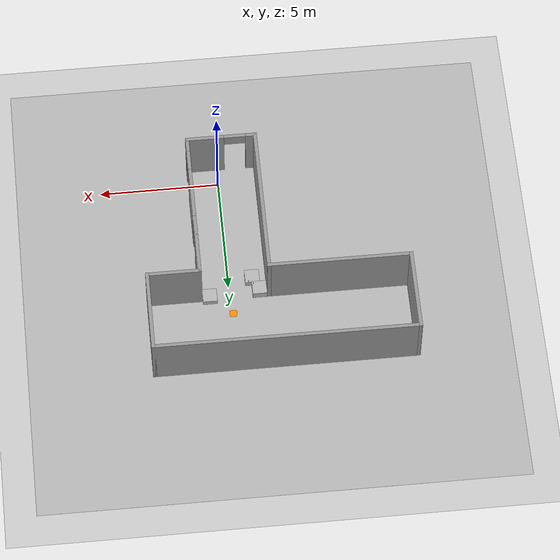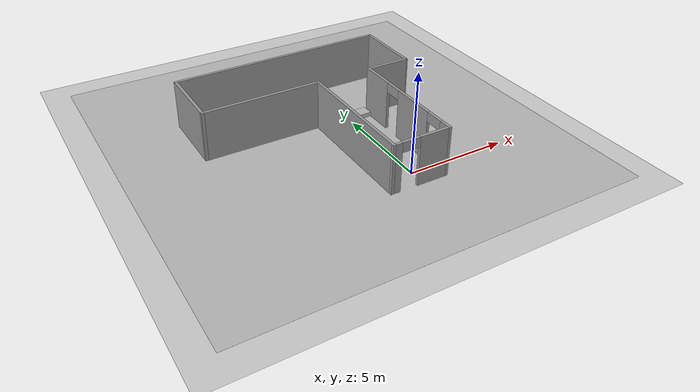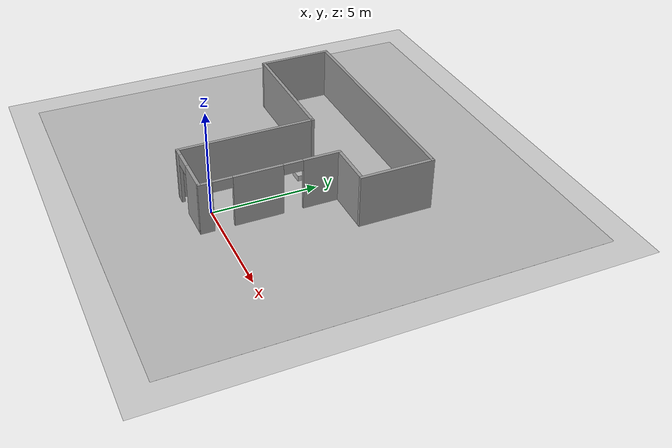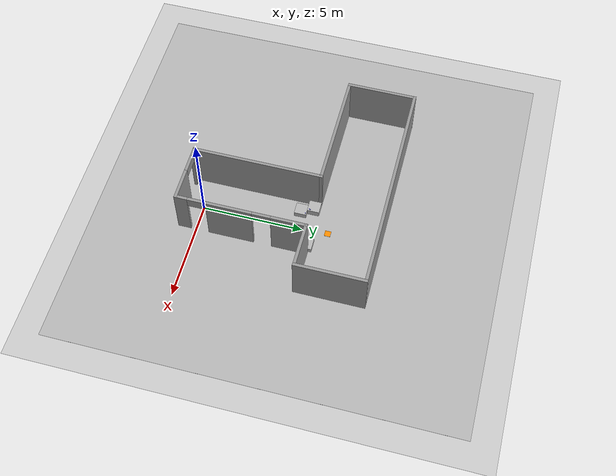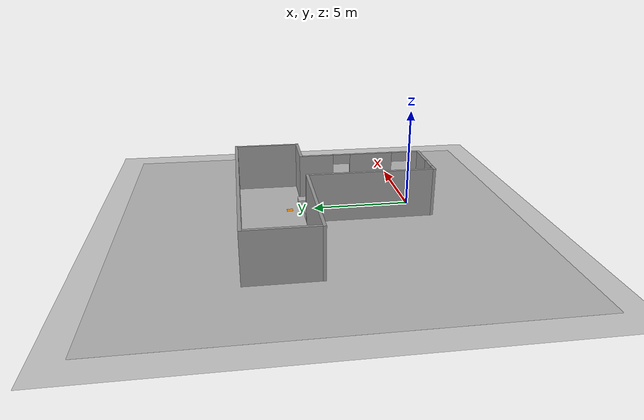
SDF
<sdf version="1.7">
 <world name="default">
  <model name="ground_plane">
   <static>1</static>
   <link name="link">
    <collision name="collision">
     <geometry><plane><normal>0 0 1</normal><size>100 100</size></plane></geometry>
     <surface>
      <contact><collide_bitmask>65535</collide_bitmask></contact>
      <friction><ode><mu>100</mu><mu2>50</mu2></ode></friction>
     </surface>
    </collision>
    <visual name="visual">
     <cast_shadows>0</cast_shadows>
     <geometry><plane><normal>0 0 1</normal><size>100 100</size></plane></geometry>
     <material>
      <script><uri>file://media/materials/scripts/gazebo.material</uri><name>Gazebo/Grey</name></script>
     </material>
    </visual>
   </link>
  </model>
  <model name="office_corridor">
   <pose>-2.07086 4.01142 0 0 -0 0</pose>
   <link name="Wall_11">
    <collision name="Wall_11_Collision">
     <geometry><box><size>6 0.15 2.5</size></box></geometry>
     <pose>0 0 1.25 0 -0 0</pose>
    </collision>
    <visual name="Wall_11_Visual">
     <pose>0 0 1.25 0 -0 0</pose>
     <geometry><box><size>6 0.15 2.5</size></box></geometry>
     <material>
      <script><uri>file://media/materials/scripts/gazebo.material</uri><name>Gazebo/Grey</name></script>
      <ambient>1 1 1 1</ambient>
     </material>
     <meta><layer>0</layer></meta>
    </visual>
    <pose>-2.5 1.5 0 0 -0 3.14159</pose>
   </link>
   <link name="Wall_12">
    <collision name="Wall_12_Collision">
     <geometry><box><size>3.5 0.15 2.5</size></box></geometry>
     <pose>0 0 1.25 0 -0 0</pose>
    </collision>
    <visual name="Wall_12_Visual">
     <pose>0 0 1.25 0 -0 0</pose>
     <geometry><box><size>3.5 0.15 2.5</size></box></geometry>
     <material>
      <script><uri>file://media/materials/scripts/gazebo.material</uri><name>Gazebo/Grey</name></script>
      <ambient>1 1 1 1</ambient>
     </material>
     <meta><layer>0</layer></meta>
    </visual>
    <pose>-5.425 3.175 0 0 -0 1.5708</pose>
   </link>
   <link name="Wall_13">
    <collision name="Wall_13_Collision">
     <geometry><box><size>11 0.15 2.5</size></box></geometry>
     <pose>0 0 1.25 0 -0 0</pose>
    </collision>
    <visual name="Wall_13_Visual">
     <pose>0 0 1.25 0 -0 0</pose>
     <geometry><box><size>11 0.15 2.5</size></box></geometry>
     <material>
      <script><uri>file://media/materials/scripts/gazebo.material</uri><name>Gazebo/Grey</name></script>
      <ambient>1 1 1 1</ambient>
     </material>
     <meta><layer>0</layer></meta>
    </visual>
    <pose>0 4.85 0 0 -0 0</pose>
   </link>
   <link name="Wall_14">
    <collision name="Wall_14_Collision">
     <geometry><box><size>3.5 0.15 2.5</size></box></geometry>
     <pose>0 0 1.25 0 -0 0</pose>
    </collision>
    <visual name="Wall_14_Visual">
     <pose>0 0 1.25 0 -0 0</pose>
     <geometry><box><size>3.5 0.15 2.5</size></box></geometry>
     <material>
      <script><uri>file://media/materials/scripts/gazebo.material</uri><name>Gazebo/Grey</name></script>
      <ambient>1 1 1 1</ambient>
     </material>
     <meta><layer>0</layer></meta>
    </visual>
    <pose>5.425 3.175 0 0 -0 -1.5708</pose>
   </link>
   <link name="Wall_2">
    <pose>1.85 -4.85 0 0 -0 0</pose>
    <visual name="Wall_2_Visual_0">
     <pose>-1.25944 0 1.25 0 -0 0</pose>
     <geometry><box><size>0.481114 0.15 2.5</size></box></geometry>
     <material>
      <script><uri>file://media/materials/scripts/gazebo.material</uri><name>Gazebo/Grey</name></script>
      <ambient>1 1 1 1</ambient>
     </material>
     <meta><layer>0</layer></meta>
    </visual>
    <collision name="Wall_2_Collision_0">
     <geometry><box><size>0.481114 0.15 2.5</size></box></geometry>
     <pose>-1.25944 0 1.25 0 -0 0</pose>
    </collision>
    <visual name="Wall_2_Visual_1">
     <pose>0.690557 0 1.25 0 -0 0</pose>
     <geometry><box><size>1.61889 0.15 2.5</size></box></geometry>
     <material>
      <script><uri>file://media/materials/scripts/gazebo.material</uri><name>Gazebo/Grey</name></script>
      <ambient>1 1 1 1</ambient>
     </material>
     <meta><layer>0</layer></meta>
    </visual>
    <collision name="Wall_2_Collision_1">
     <geometry><box><size>1.61889 0.15 2.5</size></box></geometry>
     <pose>0.690557 0 1.25 0 -0 0</pose>
    </collision>
    <visual name="Wall_2_Visual_2">
     <pose>-0.568886 0 2.25 0 -0 0</pose>
     <geometry><box><size>0.9 0.15 0.5</size></box></geometry>
     <material>
      <script><uri>file://media/materials/scripts/gazebo.material</uri><name>Gazebo/Grey</name></script>
      <ambient>1 1 1 1</ambient>
     </material>
     <meta><layer>0</layer></meta>
    </visual>
    <collision name="Wall_2_Collision_2">
     <geometry><box><size>0.9 0.15 0.5</size></box></geometry>
     <pose>-0.568886 0 2.25 0 -0 0</pose>
    </collision>
   </link>
   <link name="Wall_5">
    <collision name="Wall_5_Collision">
     <geometry><box><size>6.5 0.15 2.5</size></box></geometry>
     <pose>0 0 1.25 0 -0 0</pose>
    </collision>
    <visual name="Wall_5_Visual">
     <pose>0 0 1.25 0 -0 0</pose>
     <geometry><box><size>6.5 0.15 2.5</size></box></geometry>
     <material>
      <script><uri>file://media/materials/scripts/gazebo.material</uri><name>Gazebo/Grey</name></script>
      <ambient>1 1 1 1</ambient>
     </material>
     <meta><layer>0</layer></meta>
    </visual>
    <pose>0.425 -1.675 0 0 -0 1.5708</pose>
   </link>
   <link name="Wall_7">
    <pose>3.275 -1.675 0 0 -0 1.5708</pose>
    <visual name="Wall_7_Visual_0">
     <pose>-2.92472 0 1.25 0 -0 0</pose>
     <geometry><box><size>0.650562 0.15 2.5</size></box></geometry>
     <material>
      <script><uri>file://media/materials/scripts/gazebo.material</uri><name>Gazebo/Grey</name></script>
      <ambient>1 1 1 1</ambient>
     </material>
     <meta><layer>0</layer></meta>
    </visual>
    <collision name="Wall_7_Collision_0">
     <geometry><box><size>0.650562 0.15 2.5</size></box></geometry>
     <pose>-2.92472 0 1.25 0 -0 0</pose>
    </collision>
    <visual name="Wall_7_Visual_1">
     <pose>-0.567607 0 1.25 0 -0 0</pose>
     <geometry><box><size>2.26366 0.15 2.5</size></box></geometry>
     <material>
      <script><uri>file://media/materials/scripts/gazebo.material</uri><name>Gazebo/Grey</name></script>
      <ambient>1 1 1 1</ambient>
     </material>
     <meta><layer>0</layer></meta>
    </visual>
    <collision name="Wall_7_Collision_1">
     <geometry><box><size>2.26366 0.15 2.5</size></box></geometry>
     <pose>-0.567607 0 1.25 0 -0 0</pose>
    </collision>
    <visual name="Wall_7_Visual_2">
     <pose>2.35711 0 1.25 0 -0 0</pose>
     <geometry><box><size>1.78577 0.15 2.5</size></box></geometry>
     <material>
      <script><uri>file://media/materials/scripts/gazebo.material</uri><name>Gazebo/Grey</name></script>
      <ambient>1 1 1 1</ambient>
     </material>
     <meta><layer>0</layer></meta>
    </visual>
    <collision name="Wall_7_Collision_2">
     <geometry><box><size>1.78577 0.15 2.5</size></box></geometry>
     <pose>2.35711 0 1.25 0 -0 0</pose>
    </collision>
    <visual name="Wall_7_Visual_3">
     <pose>-2.14944 0 2.25 0 -0 0</pose>
     <geometry><box><size>0.9 0.15 0.5</size></box></geometry>
     <material>
      <script><uri>file://media/materials/scripts/gazebo.material</uri><name>Gazebo/Grey</name></script>
      <ambient>1 1 1 1</ambient>
     </material>
     <meta><layer>0</layer></meta>
    </visual>
    <collision name="Wall_7_Collision_3">
     <geometry><box><size>0.9 0.15 0.5</size></box></geometry>
     <pose>-2.14944 0 2.25 0 -0 0</pose>
    </collision>
    <visual name="Wall_7_Visual_4">
     <pose>1.01422 0 2.25 0 -0 0</pose>
     <geometry><box><size>0.9 0.15 0.5</size></box></geometry>
     <material>
      <script><uri>file://media/materials/scripts/gazebo.material</uri><name>Gazebo/Grey</name></script>
      <ambient>1 1 1 1</ambient>
     </material>
     <meta><layer>0</layer></meta>
    </visual>
    <collision name="Wall_7_Collision_4">
     <geometry><box><size>0.9 0.15 0.5</size></box></geometry>
     <pose>1.01422 0 2.25 0 -0 0</pose>
    </collision>
   </link>
   <link name="Wall_8">
    <collision name="Wall_8_Collision">
     <geometry><box><size>2.25 0.15 2.5</size></box></geometry>
     <pose>0 0 1.25 0 -0 0</pose>
    </collision>
    <visual name="Wall_8_Visual">
     <pose>0 0 1.25 0 -0 0</pose>
     <geometry><box><size>2.25 0.15 2.5</size></box></geometry>
     <material>
      <script><uri>file://media/materials/scripts/gazebo.material</uri><name>Gazebo/Grey</name></script>
      <ambient>1 1 1 1</ambient>
     </material>
     <meta><layer>0</layer></meta>
    </visual>
    <pose>4.325 1.5 0 0 -0 0</pose>
   </link>
   <static>1</static>
  </model>
  <model name="Floor_room">
   <link name="main">
    <pose>0 0 0.01 0 -0 0</pose>
    <collision name="main_Collision"><geometry><box><size>20 20 0.001</size></box></geometry></collision>
    <visual name="main_Visual">
     <geometry><box><size>20 20 0.001</size></box></geometry>
     <material>
      <script>
       <uri>model://Floor_room/materials/scripts</uri>
       <uri>model://Floor_room/materials/textures</uri>
       <name>floor_room</name>
      </script>
     </material>
    </visual>
   </link>
   <static>1</static>
   <pose>-1.45961 4.76592 0 0 -0 0</pose>
  </model>
  <model name="unit_box_SMALL_clone_0">
   <pose>-1.26832 5.2896 0.1005 0 -0 0.007743</pose>
   <link name="link">
    <inertial>
     <mass>1</mass>
     <inertia>
      <ixx>1.56e-06</ixx>
      <ixy>0</ixy>
      <ixz>0</ixz>
      <iyy>1.56e-06</iyy>
      <iyz>0</iyz>
      <izz>1.2e-07</izz>
     </inertia>
    </inertial>
    <collision name="collision"><geometry><box><size>0.6 0.6 0.46</size></box></geometry></collision>
    <visual name="visual">
     <geometry><box><size>0.6 0.6 0.46</size></box></geometry>
     <material>
      <script>
       <uri>model://side_table_1/materials/scripts</uri>
       <uri>model://side_table_1/materials/textures</uri>
       <name>side_table_1</name>
      </script>
     </material>
    </visual>
   </link>
   <static>1</static>
  </model>
  <model name="unit_box_SMALL_clone_1">
   <pose>-1.00556 4.69545 0.1005 0 -0 0.007743</pose>
   <link name="link">
    <inertial>
     <mass>1</mass>
     <inertia>
      <ixx>1.56e-06</ixx>
      <ixy>0</ixy>
      <ixz>0</ixz>
      <iyy>1.56e-06</iyy>
      <iyz>0</iyz>
      <izz>1.2e-07</izz>
     </inertia>
    </inertial>
    <collision name="collision"><geometry><box><size>0.6 0.6 0.36</size></box></geometry></collision>
    <visual name="visual">
     <geometry><box><size>0.6 0.6 0.36</size></box></geometry>
     <material>
      <script>
       <uri>model://side_table_1/materials/scripts</uri>
       <uri>model://side_table_1/materials/textures</uri>
       <name>side_table_1</name>
      </script>
     </material>
    </visual>
   </link>
   <static>1</static>
  </model>
  <model name="unit_box_SMALL_clone_2_clone">
   <pose>0.81695 5.43498 0.1005 0 -0 0.007743</pose>
   <link name="link">
    <inertial>
     <mass>1</mass>
     <inertia>
      <ixx>1.56e-06</ixx>
      <ixy>0</ixy>
      <ixz>0</ixz>
      <iyy>1.56e-06</iyy>
      <iyz>0</iyz>
      <izz>1.2e-07</izz>
     </inertia>
    </inertial>
    <collision name="collision"><geometry><box><size>0.6 0.6 0.28</size></box></geometry></collision>
    <visual name="visual">
     <geometry><box><size>0.6 0.6 0.28</size></box></geometry>
     <material>
      <script>
       <uri>model://side_table_1/materials/scripts</uri>
       <uri>model://side_table_1/materials/textures</uri>
       <name>side_table_1</name>
      </script>
     </material>
    </visual>
   </link>
   <static>1</static>
  </model>
  <model name="box_b_clone_6">
   <pose>-0.785834 4.96005 0.3105 1.4e-05 1.7e-05 0.009628</pose>
   <link name="link">
    <inertial>
     <mass>0.005</mass>
     <inertia>
      <ixx>1.56e-06</ixx>
      <ixy>0</ixy>
      <ixz>0</ixz>
      <iyy>1.56e-06</iyy>
      <iyz>0</iyz>
      <izz>1.2e-07</izz>
     </inertia>
    </inertial>
    <collision name="collision"><geometry><box><size>0.015 0.015 0.06</size></box></geometry></collision>
    <visual name="visual">
     <geometry><box><size>0.015 0.015 0.06</size></box></geometry>
     <material>
      <script><name>Gazebo/Grey</name><uri>file://media/materials/scripts/gazebo.material</uri></script>
      <ambient>0 0 1 1</ambient>
      <diffuse>0 0 1 1</diffuse>
      <specular>0 0 0 1</specular>
      <emissive>0 0 0 1</emissive>
     </material>
    </visual>
   </link>
  </model>
  <model name="box_b_clone_6_clone">
   <pose>-0.843729 4.95475 0.310499 5.3e-05 2.3e-05 0.013953</pose>
   <link name="link">
    <inertial>
     <mass>0.005</mass>
     <inertia>
      <ixx>1.56e-06</ixx>
      <ixy>0</ixy>
      <ixz>0</ixz>
      <iyy>1.56e-06</iyy>
      <iyz>0</iyz>
      <izz>1.2e-07</izz>
     </inertia>
    </inertial>
    <collision name="collision"><geometry><box><size>0.015 0.015 0.06</size></box></geometry></collision>
    <visual name="visual">
     <geometry><box><size>0.015 0.015 0.06</size></box></geometry>
     <material>
      <script><name>Gazebo/Grey</name><uri>file://media/materials/scripts/gazebo.material</uri></script>
      <ambient>0 0 1 1</ambient>
      <diffuse>0 0 1 1</diffuse>
      <specular>0 0 0 1</specular>
      <emissive>0 0 0 1</emissive>
     </material>
    </visual>
   </link>
  </model>
  <model name="box_b_clone_6_clone_clone">
   <pose>-1.02987 5.09173 0.3605 -1.1e-05 -3.3e-05 0.013899</pose>
   <link name="link">
    <inertial>
     <mass>0.005</mass>
     <inertia>
      <ixx>1.56e-06</ixx>
      <ixy>0</ixy>
      <ixz>0</ixz>
      <iyy>1.56e-06</iyy>
      <iyz>0</iyz>
      <izz>1.2e-07</izz>
     </inertia>
    </inertial>
    <collision name="collision"><geometry><box><size>0.015 0.015 0.06</size></box></geometry></collision>
    <visual name="visual">
     <geometry><box><size>0.015 0.015 0.06</size></box></geometry>
     <material>
      <script><name>Gazebo/Grey</name><uri>file://media/materials/scripts/gazebo.material</uri></script>
      <ambient>0 0 1 1</ambient>
      <diffuse>0 0 1 1</diffuse>
      <specular>0 0 0 1</specular>
      <emissive>0 0 0 1</emissive>
     </material>
    </visual>
   </link>
  </model>
  <model name="box_b_clone_6_clone_clone_clone">
   <pose>-1.01917 5.14847 0.360499 2.9e-05 3.9e-05 0.012694</pose>
   <link name="link">
    <inertial>
     <mass>0.005</mass>
     <inertia>
      <ixx>1.56e-06</ixx>
      <ixy>0</ixy>
      <ixz>0</ixz>
      <iyy>1.56e-06</iyy>
      <iyz>0</iyz>
      <izz>1.2e-07</izz>
     </inertia>
    </inertial>
    <collision name="collision"><geometry><box><size>0.015 0.015 0.06</size></box></geometry></collision>
    <visual name="visual">
     <geometry><box><size>0.015 0.015 0.06</size></box></geometry>
     <material>
      <script><name>Gazebo/Grey</name><uri>file://media/materials/scripts/gazebo.material</uri></script>
      <ambient>0 0 1 1</ambient>
      <diffuse>0 0 1 1</diffuse>
      <specular>0 0 0 1</specular>
      <emissive>0 0 0 1</emissive>
     </material>
    </visual>
   </link>
  </model>
  <model name="cube_o">
   <link name="link_2">
    <pose>0 0 0.1 0 -0 0</pose>
    <inertial>
     <mass>1</mass>
     <inertia>
      <ixx>0.166667</ixx>
      <ixy>0</ixy>
      <ixz>0</ixz>
      <iyy>0.166667</iyy>
      <iyz>0</iyz>
      <izz>0.166667</izz>
     </inertia>
    </inertial>
    <visual name="visual">
     <geometry><box><size>0.3 0.3 0.2</size></box></geometry>
     <material>
      <lighting>1</lighting>
      <script><uri>file://media/materials/scripts/gazebo.material</uri><name>Gazebo/Grey</name></script>
      <ambient>1 0.561 0 1</ambient>
      <diffuse>1 0.561 0 1</diffuse>
      <specular>0 0 0 1</specular>
      <emissive>0 0 0 1</emissive>
      <shader type="vertex"><normal_map>__default__</normal_map></shader>
     </material>
    </visual>
    <collision name="collision">
     <geometry><box><size>0.3 0.3 0.01</size></box></geometry>
     <surface>
      <friction>
       <ode><mu>1</mu><mu2>1</mu2><fdir1>0 0 0</fdir1><slip1>0</slip1><slip2>0</slip2></ode>
       <torsional>
        <coefficient>1</coefficient>
        <patch_radius>0</patch_radius>
        <surface_radius>0</surface_radius>
        <use_patch_radius>1</use_patch_radius>
        <ode><slip>0</slip></ode>
       </torsional>
      </friction>
      <bounce><restitution_coefficient>0</restitution_coefficient><threshold>1e+06</threshold></bounce>
      <contact>
       <collide_without_contact>0</collide_without_contact>
       <collide_without_contact_bitmask>1</collide_without_contact_bitmask>
       <collide_bitmask>1</collide_bitmask>
       <ode>
        <soft_cfm>0</soft_cfm>
        <soft_erp>0.2</soft_erp>
        <kp>1e+13</kp>
        <kd>1</kd>
        <max_vel>0.01</max_vel>
        <min_depth>0</min_depth>
       </ode>
       <bullet>
        <split_impulse>1</split_impulse>
        <split_impulse_penetration_threshold>-0.01</split_impulse_penetration_threshold>
        <soft_cfm>0</soft_cfm>
        <soft_erp>0.2</soft_erp>
        <kp>1e+13</kp>
        <kd>1</kd>
       </bullet>
      </contact>
     </surface>
    </collision>
   </link>
   <static>1</static>
   <pose>-0.096551 6.26252 -0.187337 0 -0 0</pose>
  </model>
 </world>
</sdf>
